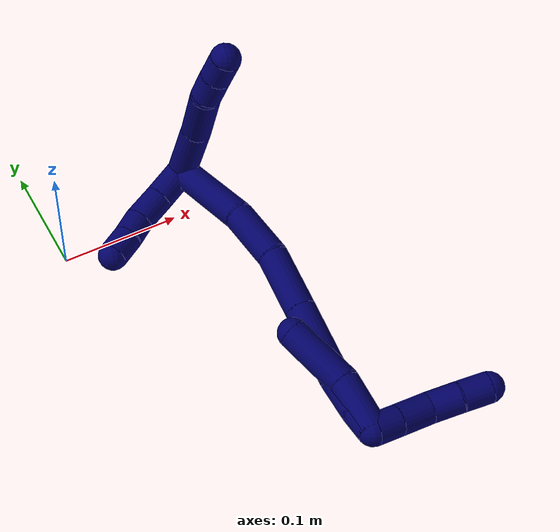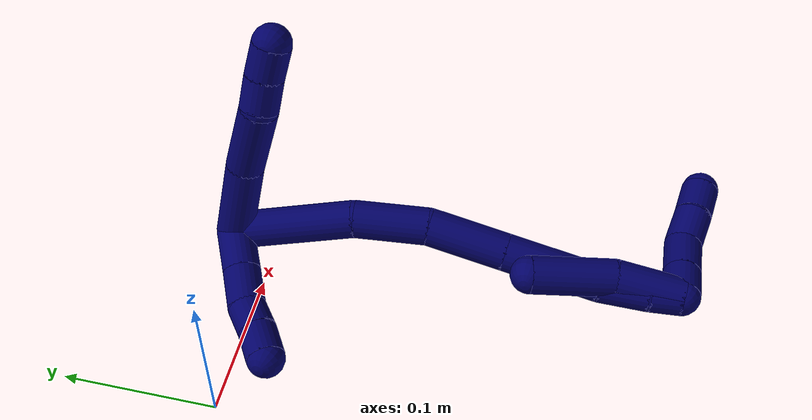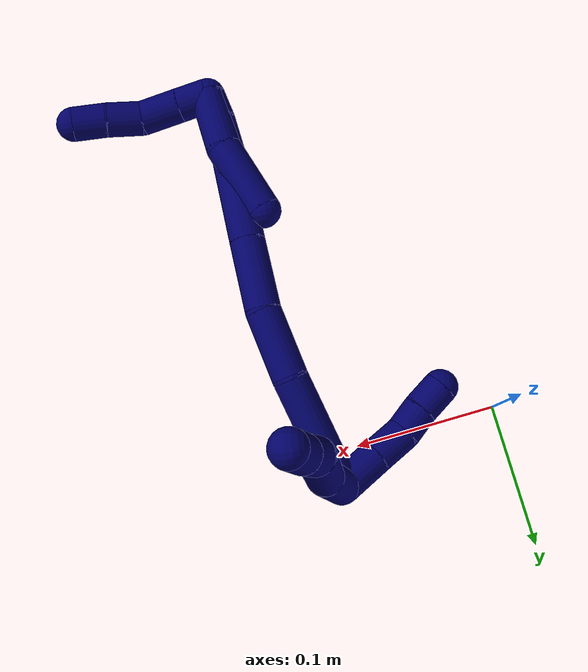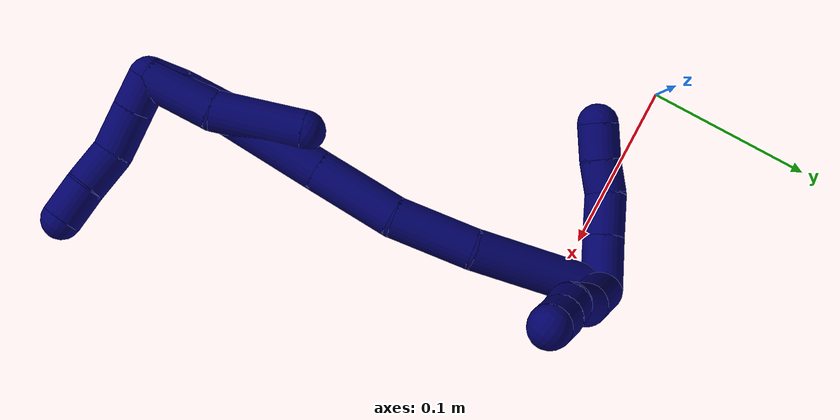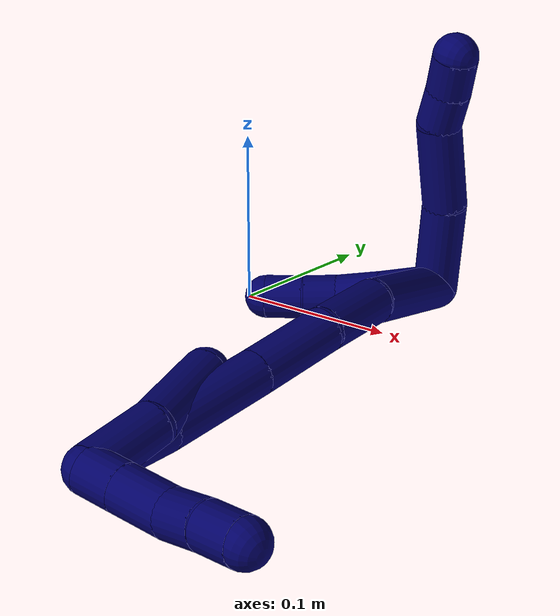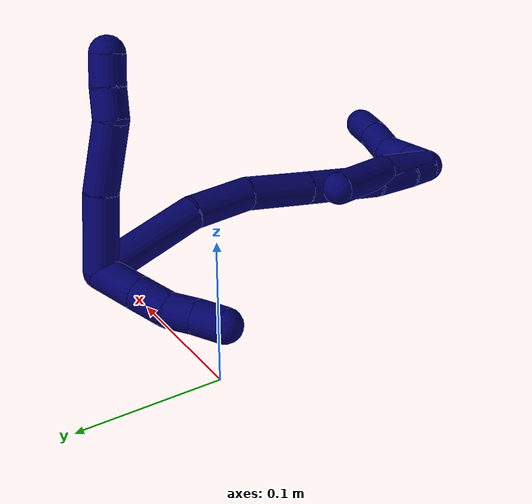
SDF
<sdf version="1.7">
 <world name="default">
  <model name="7">
   <static>0</static>
   <link name="7">
    <collision name="collision-cylinder-e_1_2_8">
     <pose>0.02672 0.007601 -0.000725 -1.66585 1.29247 -1.38508</pose>
     <geometry><cylinder><radius>0.0125</radius><length>0.055579</length></cylinder></geometry>
     <surface>
      <friction><ode><mu>1.16</mu><mu2>1.16</mu2><slip1>0</slip1><slip2>0</slip2></ode></friction>
      <contact><ode><kp>1e+06</kp><kd>1</kd><max_vel>0</max_vel><min_depth>0.001</min_depth></ode></contact>
     </surface>
    </collision>
    <visual name="visual-cylinder-e_1_2_8">
     <pose>0.02672 0.007601 -0.000725 -1.66585 1.29247 -1.38508</pose>
     <geometry><cylinder><radius>0.0125</radius><length>0.055579</length></cylinder></geometry>
     <material><ambient>0.003922 0 0.403922 1</ambient></material>
    </visual>
    <collision name="collision-cylinder-e_2_8_9">
     <pose>0.078364 0.019415 0.000756 -1.08866 1.38223 -0.928482</pose>
     <geometry><cylinder><radius>0.0125</radius><length>0.050749</length></cylinder></geometry>
     <surface>
      <friction><ode><mu>1.16</mu><mu2>1.16</mu2><slip1>0</slip1><slip2>0</slip2></ode></friction>
      <contact><ode><kp>1e+06</kp><kd>1</kd><max_vel>0</max_vel><min_depth>0.001</min_depth></ode></contact>
     </surface>
    </collision>
    <visual name="visual-cylinder-e_2_8_9">
     <pose>0.078364 0.019415 0.000756 -1.08866 1.38223 -0.928482</pose>
     <geometry><cylinder><radius>0.0125</radius><length>0.050749</length></cylinder></geometry>
     <material><ambient>0.003922 0 0.403922 1</ambient></material>
    </visual>
    <collision name="collision-cylinder-e_3_9_10">
     <pose>0.113394 0.027116 0.001005 -2.08223 1.19407 -1.71959</pose>
     <geometry><cylinder><radius>0.0125</radius><length>0.021735</length></cylinder></geometry>
     <surface>
      <friction><ode><mu>1.16</mu><mu2>1.16</mu2><slip1>0</slip1><slip2>0</slip2></ode></friction>
      <contact><ode><kp>1e+06</kp><kd>1</kd><max_vel>0</max_vel><min_depth>0.001</min_depth></ode></contact>
     </surface>
    </collision>
    <visual name="visual-cylinder-e_3_9_10">
     <pose>0.113394 0.027116 0.001005 -2.08223 1.19407 -1.71959</pose>
     <geometry><cylinder><radius>0.0125</radius><length>0.021735</length></cylinder></geometry>
     <material><ambient>0.003922 0 0.403922 1</ambient></material>
    </visual>
    <collision name="collision-cylinder-e_4_10_6">
     <pose>0.133985 0.033376 -0.002586 -2.10318 1.27287 -1.82505</pose>
     <geometry><cylinder><radius>0.0125</radius><length>0.021938</length></cylinder></geometry>
     <surface>
      <friction><ode><mu>1.16</mu><mu2>1.16</mu2><slip1>0</slip1><slip2>0</slip2></ode></friction>
      <contact><ode><kp>1e+06</kp><kd>1</kd><max_vel>0</max_vel><min_depth>0.001</min_depth></ode></contact>
     </surface>
    </collision>
    <visual name="visual-cylinder-e_4_10_6">
     <pose>0.133985 0.033376 -0.002586 -2.10318 1.27287 -1.82505</pose>
     <geometry><cylinder><radius>0.0125</radius><length>0.021938</length></cylinder></geometry>
     <material><ambient>0.003922 0 0.403922 1</ambient></material>
    </visual>
    <collision name="collision-cylinder-e_1_2_11">
     <pose>-0.001821 -0.010047 0.012171 0.690085 -0.114871 -0.041327</pose>
     <geometry><cylinder><radius>0.0125</radius><length>0.031773</length></cylinder></geometry>
     <surface>
      <friction><ode><mu>1.16</mu><mu2>1.16</mu2><slip1>0</slip1><slip2>0</slip2></ode></friction>
      <contact><ode><kp>1e+06</kp><kd>1</kd><max_vel>0</max_vel><min_depth>0.001</min_depth></ode></contact>
     </surface>
    </collision>
    <visual name="visual-cylinder-e_1_2_11">
     <pose>-0.001821 -0.010047 0.012171 0.690085 -0.114871 -0.041327</pose>
     <geometry><cylinder><radius>0.0125</radius><length>0.031773</length></cylinder></geometry>
     <material><ambient>0.003922 0 0.403922 1</ambient></material>
    </visual>
    <collision name="collision-cylinder-e_2_11_12">
     <pose>-0.004888 -0.02818 0.03465 0.665185 -0.094793 -0.032765</pose>
     <geometry><cylinder><radius>0.0125</radius><length>0.026322</length></cylinder></geometry>
     <surface>
      <friction><ode><mu>1.16</mu><mu2>1.16</mu2><slip1>0</slip1><slip2>0</slip2></ode></friction>
      <contact><ode><kp>1e+06</kp><kd>1</kd><max_vel>0</max_vel><min_depth>0.001</min_depth></ode></contact>
     </surface>
    </collision>
    <visual name="visual-cylinder-e_2_11_12">
     <pose>-0.004888 -0.02818 0.03465 0.665185 -0.094793 -0.032765</pose>
     <geometry><cylinder><radius>0.0125</radius><length>0.026322</length></cylinder></geometry>
     <material><ambient>0.003922 0 0.403922 1</ambient></material>
    </visual>
    <collision name="collision-cylinder-e_3_12_13">
     <pose>-0.004802 -0.043501 0.051923 0.804405 0.131779 0.056124</pose>
     <geometry><cylinder><radius>0.0125</radius><length>0.02026</length></cylinder></geometry>
     <surface>
      <friction><ode><mu>1.16</mu><mu2>1.16</mu2><slip1>0</slip1><slip2>0</slip2></ode></friction>
      <contact><ode><kp>1e+06</kp><kd>1</kd><max_vel>0</max_vel><min_depth>0.001</min_depth></ode></contact>
     </surface>
    </collision>
    <visual name="visual-cylinder-e_3_12_13">
     <pose>-0.004802 -0.043501 0.051923 0.804405 0.131779 0.056124</pose>
     <geometry><cylinder><radius>0.0125</radius><length>0.02026</length></cylinder></geometry>
     <material><ambient>0.003922 0 0.403922 1</ambient></material>
    </visual>
    <collision name="collision-cylinder-e_4_13_5">
     <pose>-0.002534 -0.057829 0.067008 0.71807 0.086702 0.032557</pose>
     <geometry><cylinder><radius>0.0125</radius><length>0.021645</length></cylinder></geometry>
     <surface>
      <friction><ode><mu>1.16</mu><mu2>1.16</mu2><slip1>0</slip1><slip2>0</slip2></ode></friction>
      <contact><ode><kp>1e+06</kp><kd>1</kd><max_vel>0</max_vel><min_depth>0.001</min_depth></ode></contact>
     </surface>
    </collision>
    <visual name="visual-cylinder-e_4_13_5">
     <pose>-0.002534 -0.057829 0.067008 0.71807 0.086702 0.032557</pose>
     <geometry><cylinder><radius>0.0125</radius><length>0.021645</length></cylinder></geometry>
     <material><ambient>0.003922 0 0.403922 1</ambient></material>
    </visual>
    <collision name="collision-cylinder-e_1_2_14">
     <pose>0.024864 -0.03087 -0.010518 1.89919 0.651388 0.881764</pose>
     <geometry><cylinder><radius>0.0125</radius><length>0.08202</length></cylinder></geometry>
     <surface>
      <friction><ode><mu>1.16</mu><mu2>1.16</mu2><slip1>0</slip1><slip2>0</slip2></ode></friction>
      <contact><ode><kp>1e+06</kp><kd>1</kd><max_vel>0</max_vel><min_depth>0.001</min_depth></ode></contact>
     </surface>
    </collision>
    <visual name="visual-cylinder-e_1_2_14">
     <pose>0.024864 -0.03087 -0.010518 1.89919 0.651388 0.881764</pose>
     <geometry><cylinder><radius>0.0125</radius><length>0.08202</length></cylinder></geometry>
     <material><ambient>0.003922 0 0.403922 1</ambient></material>
    </visual>
    <collision name="collision-cylinder-e_2_14_15">
     <pose>0.060058 -0.0833 -0.026881 1.83549 0.433161 0.560108</pose>
     <geometry><cylinder><radius>0.0125</radius><length>0.049222</length></cylinder></geometry>
     <surface>
      <friction><ode><mu>1.16</mu><mu2>1.16</mu2><slip1>0</slip1><slip2>0</slip2></ode></friction>
      <contact><ode><kp>1e+06</kp><kd>1</kd><max_vel>0</max_vel><min_depth>0.001</min_depth></ode></contact>
     </surface>
    </collision>
    <visual name="visual-cylinder-e_2_14_15">
     <pose>0.060058 -0.0833 -0.026881 1.83549 0.433161 0.560108</pose>
     <geometry><cylinder><radius>0.0125</radius><length>0.049222</length></cylinder></geometry>
     <material><ambient>0.003922 0 0.403922 1</ambient></material>
    </visual>
    <collision name="collision-cylinder-e_3_15_16">
     <pose>0.077261 -0.129985 -0.035637 1.68621 0.265313 0.297394</pose>
     <geometry><cylinder><radius>0.0125</radius><length>0.05242</length></cylinder></geometry>
     <surface>
      <friction><ode><mu>1.16</mu><mu2>1.16</mu2><slip1>0</slip1><slip2>0</slip2></ode></friction>
      <contact><ode><kp>1e+06</kp><kd>1</kd><max_vel>0</max_vel><min_depth>0.001</min_depth></ode></contact>
     </surface>
    </collision>
    <visual name="visual-cylinder-e_3_15_16">
     <pose>0.077261 -0.129985 -0.035637 1.68621 0.265313 0.297394</pose>
     <geometry><cylinder><radius>0.0125</radius><length>0.05242</length></cylinder></geometry>
     <material><ambient>0.003922 0 0.403922 1</ambient></material>
    </visual>
    <collision name="collision-cylinder-e_4_16_17">
     <pose>0.092793 -0.185577 -0.041754 1.67557 0.27546 0.305498</pose>
     <geometry><cylinder><radius>0.0125</radius><length>0.063671</length></cylinder></geometry>
     <surface>
      <friction><ode><mu>1.16</mu><mu2>1.16</mu2><slip1>0</slip1><slip2>0</slip2></ode></friction>
      <contact><ode><kp>1e+06</kp><kd>1</kd><max_vel>0</max_vel><min_depth>0.001</min_depth></ode></contact>
     </surface>
    </collision>
    <visual name="visual-cylinder-e_4_16_17">
     <pose>0.092793 -0.185577 -0.041754 1.67557 0.27546 0.305498</pose>
     <geometry><cylinder><radius>0.0125</radius><length>0.063671</length></cylinder></geometry>
     <material><ambient>0.003922 0 0.403922 1</ambient></material>
    </visual>
    <collision name="collision-cylinder-e_5_17_18">
     <pose>0.107801 -0.230555 -0.047358 1.7347 0.40755 0.477943</pose>
     <geometry><cylinder><radius>0.0125</radius><length>0.03204</length></cylinder></geometry>
     <surface>
      <friction><ode><mu>1.16</mu><mu2>1.16</mu2><slip1>0</slip1><slip2>0</slip2></ode></friction>
      <contact><ode><kp>1e+06</kp><kd>1</kd><max_vel>0</max_vel><min_depth>0.001</min_depth></ode></contact>
     </surface>
    </collision>
    <visual name="visual-cylinder-e_5_17_18">
     <pose>0.107801 -0.230555 -0.047358 1.7347 0.40755 0.477943</pose>
     <geometry><cylinder><radius>0.0125</radius><length>0.03204</length></cylinder></geometry>
     <material><ambient>0.003922 0 0.403922 1</ambient></material>
    </visual>
    <collision name="collision-cylinder-e_6_18_1">
     <pose>0.118277 -0.254174 -0.052283 1.84129 0.41156 0.535788</pose>
     <geometry><cylinder><radius>0.0125</radius><length>0.020627</length></cylinder></geometry>
     <surface>
      <friction><ode><mu>1.16</mu><mu2>1.16</mu2><slip1>0</slip1><slip2>0</slip2></ode></friction>
      <contact><ode><kp>1e+06</kp><kd>1</kd><max_vel>0</max_vel><min_depth>0.001</min_depth></ode></contact>
     </surface>
    </collision>
    <visual name="visual-cylinder-e_6_18_1">
     <pose>0.118277 -0.254174 -0.052283 1.84129 0.41156 0.535788</pose>
     <geometry><cylinder><radius>0.0125</radius><length>0.020627</length></cylinder></geometry>
     <material><ambient>0.003922 0 0.403922 1</ambient></material>
    </visual>
    <collision name="collision-cylinder-e_1_1_19">
     <pose>0.116381 -0.24231 -0.050908 -1.38688 -0.275112 0.229101</pose>
     <geometry><cylinder><radius>0.0125</radius><length>0.044332</length></cylinder></geometry>
     <surface>
      <friction><ode><mu>1.16</mu><mu2>1.16</mu2><slip1>0</slip1><slip2>0</slip2></ode></friction>
      <contact><ode><kp>1e+06</kp><kd>1</kd><max_vel>0</max_vel><min_depth>0.001</min_depth></ode></contact>
     </surface>
    </collision>
    <visual name="visual-cylinder-e_1_1_19">
     <pose>0.116381 -0.24231 -0.050908 -1.38688 -0.275112 0.229101</pose>
     <geometry><cylinder><radius>0.0125</radius><length>0.044332</length></cylinder></geometry>
     <material><ambient>0.003922 0 0.403922 1</ambient></material>
    </visual>
    <collision name="collision-cylinder-e_2_19_4">
     <pose>0.101 -0.197674 -0.035729 -1.12606 -0.342939 0.217738</pose>
     <geometry><cylinder><radius>0.0125</radius><length>0.055668</length></cylinder></geometry>
     <surface>
      <friction><ode><mu>1.16</mu><mu2>1.16</mu2><slip1>0</slip1><slip2>0</slip2></ode></friction>
      <contact><ode><kp>1e+06</kp><kd>1</kd><max_vel>0</max_vel><min_depth>0.001</min_depth></ode></contact>
     </surface>
    </collision>
    <visual name="visual-cylinder-e_2_19_4">
     <pose>0.101 -0.197674 -0.035729 -1.12606 -0.342939 0.217738</pose>
     <geometry><cylinder><radius>0.0125</radius><length>0.055668</length></cylinder></geometry>
     <material><ambient>0.003922 0 0.403922 1</ambient></material>
    </visual>
    <collision name="collision-cylinder-e_1_1_20">
     <pose>0.12225 -0.261548 -0.065419 -2.97948 -0.014163 0.173912</pose>
     <geometry><cylinder><radius>0.0125</radius><length>0.021504</length></cylinder></geometry>
     <surface>
      <friction><ode><mu>1.16</mu><mu2>1.16</mu2><slip1>0</slip1><slip2>0</slip2></ode></friction>
      <contact><ode><kp>1e+06</kp><kd>1</kd><max_vel>0</max_vel><min_depth>0.001</min_depth></ode></contact>
     </surface>
    </collision>
    <visual name="visual-cylinder-e_1_1_20">
     <pose>0.12225 -0.261548 -0.065419 -2.97948 -0.014163 0.173912</pose>
     <geometry><cylinder><radius>0.0125</radius><length>0.021504</length></cylinder></geometry>
     <material><ambient>0.003922 0 0.403922 1</ambient></material>
    </visual>
    <collision name="collision-cylinder-e_2_20_21">
     <pose>0.121864 -0.257403 -0.090332 -2.9747 -0.016133 0.192295</pose>
     <geometry><cylinder><radius>0.0125</radius><length>0.029012</length></cylinder></geometry>
     <surface>
      <friction><ode><mu>1.16</mu><mu2>1.16</mu2><slip1>0</slip1><slip2>0</slip2></ode></friction>
      <contact><ode><kp>1e+06</kp><kd>1</kd><max_vel>0</max_vel><min_depth>0.001</min_depth></ode></contact>
     </surface>
    </collision>
    <visual name="visual-cylinder-e_2_20_21">
     <pose>0.121864 -0.257403 -0.090332 -2.9747 -0.016133 0.192295</pose>
     <geometry><cylinder><radius>0.0125</radius><length>0.029012</length></cylinder></geometry>
     <material><ambient>0.003922 0 0.403922 1</ambient></material>
    </visual>
    <collision name="collision-cylinder-e_3_21_22">
     <pose>0.125744 -0.253707 -0.116745 -3.03574 0.325804 -2.518</pose>
     <geometry><cylinder><radius>0.0125</radius><length>0.02571</length></cylinder></geometry>
     <surface>
      <friction><ode><mu>1.16</mu><mu2>1.16</mu2><slip1>0</slip1><slip2>0</slip2></ode></friction>
      <contact><ode><kp>1e+06</kp><kd>1</kd><max_vel>0</max_vel><min_depth>0.001</min_depth></ode></contact>
     </surface>
    </collision>
    <visual name="visual-cylinder-e_3_21_22">
     <pose>0.125744 -0.253707 -0.116745 -3.03574 0.325804 -2.518</pose>
     <geometry><cylinder><radius>0.0125</radius><length>0.02571</length></cylinder></geometry>
     <material><ambient>0.003922 0 0.403922 1</ambient></material>
    </visual>
    <collision name="collision-cylinder-e_4_22_3">
     <pose>0.132314 -0.251228 -0.140425 -3.03893 0.20801 -2.22682</pose>
     <geometry><cylinder><radius>0.0125</radius><length>0.023774</length></cylinder></geometry>
     <surface>
      <friction><ode><mu>1.16</mu><mu2>1.16</mu2><slip1>0</slip1><slip2>0</slip2></ode></friction>
      <contact><ode><kp>1e+06</kp><kd>1</kd><max_vel>0</max_vel><min_depth>0.001</min_depth></ode></contact>
     </surface>
    </collision>
    <visual name="visual-cylinder-e_4_22_3">
     <pose>0.132314 -0.251228 -0.140425 -3.03893 0.20801 -2.22682</pose>
     <geometry><cylinder><radius>0.0125</radius><length>0.023774</length></cylinder></geometry>
     <material><ambient>0.003922 0 0.403922 1</ambient></material>
    </visual>
    <collision name="collision-sphere-3">
     <pose>0.134768 -0.250036 -0.151995 0 -0 0</pose>
     <geometry><sphere><radius>0.0125</radius></sphere></geometry>
     <surface>
      <friction><ode><mu>1.16</mu><mu2>1.16</mu2><slip1>0</slip1><slip2>0</slip2></ode></friction>
      <contact><ode><kp>1e+06</kp><kd>1</kd><max_vel>0</max_vel><min_depth>0.001</min_depth></ode></contact>
     </surface>
    </collision>
    <visual name="visual-sphere-3">
     <pose>0.134768 -0.250036 -0.151995 0 -0 0</pose>
     <geometry><sphere><radius>0.0125</radius></sphere></geometry>
     <material><ambient>0.003922 0 0.403922 1</ambient></material>
    </visual>
    <collision name="collision-sphere-22">
     <pose>0.129859 -0.25242 -0.128856 0 -0 0</pose>
     <geometry><sphere><radius>0.0125</radius></sphere></geometry>
     <surface>
      <friction><ode><mu>1.16</mu><mu2>1.16</mu2><slip1>0</slip1><slip2>0</slip2></ode></friction>
      <contact><ode><kp>1e+06</kp><kd>1</kd><max_vel>0</max_vel><min_depth>0.001</min_depth></ode></contact>
     </surface>
    </collision>
    <visual name="visual-sphere-22">
     <pose>0.129859 -0.25242 -0.128856 0 -0 0</pose>
     <geometry><sphere><radius>0.0125</radius></sphere></geometry>
     <material><ambient>0.003922 0 0.403922 1</ambient></material>
    </visual>
    <collision name="collision-sphere-21">
     <pose>0.12163 -0.254994 -0.104635 0 -0 0</pose>
     <geometry><sphere><radius>0.0125</radius></sphere></geometry>
     <surface>
      <friction><ode><mu>1.16</mu><mu2>1.16</mu2><slip1>0</slip1><slip2>0</slip2></ode></friction>
      <contact><ode><kp>1e+06</kp><kd>1</kd><max_vel>0</max_vel><min_depth>0.001</min_depth></ode></contact>
     </surface>
    </collision>
    <visual name="visual-sphere-21">
     <pose>0.12163 -0.254994 -0.104635 0 -0 0</pose>
     <geometry><sphere><radius>0.0125</radius></sphere></geometry>
     <material><ambient>0.003922 0 0.403922 1</ambient></material>
    </visual>
    <collision name="collision-sphere-20">
     <pose>0.122098 -0.259813 -0.07603 0 -0 0</pose>
     <geometry><sphere><radius>0.0125</radius></sphere></geometry>
     <surface>
      <friction><ode><mu>1.16</mu><mu2>1.16</mu2><slip1>0</slip1><slip2>0</slip2></ode></friction>
      <contact><ode><kp>1e+06</kp><kd>1</kd><max_vel>0</max_vel><min_depth>0.001</min_depth></ode></contact>
     </surface>
    </collision>
    <visual name="visual-sphere-20">
     <pose>0.122098 -0.259813 -0.07603 0 -0 0</pose>
     <geometry><sphere><radius>0.0125</radius></sphere></geometry>
     <material><ambient>0.003922 0 0.403922 1</ambient></material>
    </visual>
    <collision name="collision-sphere-4">
     <pose>0.091641 -0.174011 -0.024452 0 -0 0</pose>
     <geometry><sphere><radius>0.0125</radius></sphere></geometry>
     <surface>
      <friction><ode><mu>1.16</mu><mu2>1.16</mu2><slip1>0</slip1><slip2>0</slip2></ode></friction>
      <contact><ode><kp>1e+06</kp><kd>1</kd><max_vel>0</max_vel><min_depth>0.001</min_depth></ode></contact>
     </surface>
    </collision>
    <visual name="visual-sphere-4">
     <pose>0.091641 -0.174011 -0.024452 0 -0 0</pose>
     <geometry><sphere><radius>0.0125</radius></sphere></geometry>
     <material><ambient>0.003922 0 0.403922 1</ambient></material>
    </visual>
    <collision name="collision-sphere-11">
     <pose>-0.003642 -0.020094 0.024342 0 -0 0</pose>
     <geometry><sphere><radius>0.0125</radius></sphere></geometry>
     <surface>
      <friction><ode><mu>1.16</mu><mu2>1.16</mu2><slip1>0</slip1><slip2>0</slip2></ode></friction>
      <contact><ode><kp>1e+06</kp><kd>1</kd><max_vel>0</max_vel><min_depth>0.001</min_depth></ode></contact>
     </surface>
    </collision>
    <visual name="visual-sphere-11">
     <pose>-0.003642 -0.020094 0.024342 0 -0 0</pose>
     <geometry><sphere><radius>0.0125</radius></sphere></geometry>
     <material><ambient>0.003922 0 0.403922 1</ambient></material>
    </visual>
    <collision name="collision-sphere-6">
     <pose>0.144471 0.036151 -0.004221 0 -0 0</pose>
     <geometry><sphere><radius>0.0125</radius></sphere></geometry>
     <surface>
      <friction><ode><mu>1.16</mu><mu2>1.16</mu2><slip1>0</slip1><slip2>0</slip2></ode></friction>
      <contact><ode><kp>1e+06</kp><kd>1</kd><max_vel>0</max_vel><min_depth>0.001</min_depth></ode></contact>
     </surface>
    </collision>
    <visual name="visual-sphere-6">
     <pose>0.144471 0.036151 -0.004221 0 -0 0</pose>
     <geometry><sphere><radius>0.0125</radius></sphere></geometry>
     <material><ambient>0.003922 0 0.403922 1</ambient></material>
    </visual>
    <collision name="collision-sphere-10">
     <pose>0.1235 0.030602 -0.000952 0 -0 0</pose>
     <geometry><sphere><radius>0.0125</radius></sphere></geometry>
     <surface>
      <friction><ode><mu>1.16</mu><mu2>1.16</mu2><slip1>0</slip1><slip2>0</slip2></ode></friction>
      <contact><ode><kp>1e+06</kp><kd>1</kd><max_vel>0</max_vel><min_depth>0.001</min_depth></ode></contact>
     </surface>
    </collision>
    <visual name="visual-sphere-10">
     <pose>0.1235 0.030602 -0.000952 0 -0 0</pose>
     <geometry><sphere><radius>0.0125</radius></sphere></geometry>
     <material><ambient>0.003922 0 0.403922 1</ambient></material>
    </visual>
    <collision name="collision-sphere-9">
     <pose>0.103289 0.023629 0.002962 0 -0 0</pose>
     <geometry><sphere><radius>0.0125</radius></sphere></geometry>
     <surface>
      <friction><ode><mu>1.16</mu><mu2>1.16</mu2><slip1>0</slip1><slip2>0</slip2></ode></friction>
      <contact><ode><kp>1e+06</kp><kd>1</kd><max_vel>0</max_vel><min_depth>0.001</min_depth></ode></contact>
     </surface>
    </collision>
    <visual name="visual-sphere-9">
     <pose>0.103289 0.023629 0.002962 0 -0 0</pose>
     <geometry><sphere><radius>0.0125</radius></sphere></geometry>
     <material><ambient>0.003922 0 0.403922 1</ambient></material>
    </visual>
    <collision name="collision-sphere-2">
     <geometry><sphere><radius>0.0125</radius></sphere></geometry>
     <surface>
      <friction><ode><mu>1.16</mu><mu2>1.16</mu2><slip1>0</slip1><slip2>0</slip2></ode></friction>
      <contact><ode><kp>1e+06</kp><kd>1</kd><max_vel>0</max_vel><min_depth>0.001</min_depth></ode></contact>
     </surface>
    </collision>
    <visual name="visual-sphere-2">
     <geometry><sphere><radius>0.0125</radius></sphere></geometry>
     <material><ambient>0.003922 0 0.403922 1</ambient></material>
    </visual>
    <collision name="collision-sphere-19">
     <pose>0.11036 -0.221338 -0.047007 0 -0 0</pose>
     <geometry><sphere><radius>0.0125</radius></sphere></geometry>
     <surface>
      <friction><ode><mu>1.16</mu><mu2>1.16</mu2><slip1>0</slip1><slip2>0</slip2></ode></friction>
      <contact><ode><kp>1e+06</kp><kd>1</kd><max_vel>0</max_vel><min_depth>0.001</min_depth></ode></contact>
     </surface>
    </collision>
    <visual name="visual-sphere-19">
     <pose>0.11036 -0.221338 -0.047007 0 -0 0</pose>
     <geometry><sphere><radius>0.0125</radius></sphere></geometry>
     <material><ambient>0.003922 0 0.403922 1</ambient></material>
    </visual>
    <collision name="collision-sphere-8">
     <pose>0.05344 0.015201 -0.001449 0 -0 0</pose>
     <geometry><sphere><radius>0.0125</radius></sphere></geometry>
     <surface>
      <friction><ode><mu>1.16</mu><mu2>1.16</mu2><slip1>0</slip1><slip2>0</slip2></ode></friction>
      <contact><ode><kp>1e+06</kp><kd>1</kd><max_vel>0</max_vel><min_depth>0.001</min_depth></ode></contact>
     </surface>
    </collision>
    <visual name="visual-sphere-8">
     <pose>0.05344 0.015201 -0.001449 0 -0 0</pose>
     <geometry><sphere><radius>0.0125</radius></sphere></geometry>
     <material><ambient>0.003922 0 0.403922 1</ambient></material>
    </visual>
    <collision name="collision-sphere-12">
     <pose>-0.006133 -0.036267 0.044959 0 -0 0</pose>
     <geometry><sphere><radius>0.0125</radius></sphere></geometry>
     <surface>
      <friction><ode><mu>1.16</mu><mu2>1.16</mu2><slip1>0</slip1><slip2>0</slip2></ode></friction>
      <contact><ode><kp>1e+06</kp><kd>1</kd><max_vel>0</max_vel><min_depth>0.001</min_depth></ode></contact>
     </surface>
    </collision>
    <visual name="visual-sphere-12">
     <pose>-0.006133 -0.036267 0.044959 0 -0 0</pose>
     <geometry><sphere><radius>0.0125</radius></sphere></geometry>
     <material><ambient>0.003922 0 0.403922 1</ambient></material>
    </visual>
    <collision name="collision-sphere-13">
     <pose>-0.003471 -0.050736 0.058888 0 -0 0</pose>
     <geometry><sphere><radius>0.0125</radius></sphere></geometry>
     <surface>
      <friction><ode><mu>1.16</mu><mu2>1.16</mu2><slip1>0</slip1><slip2>0</slip2></ode></friction>
      <contact><ode><kp>1e+06</kp><kd>1</kd><max_vel>0</max_vel><min_depth>0.001</min_depth></ode></contact>
     </surface>
    </collision>
    <visual name="visual-sphere-13">
     <pose>-0.003471 -0.050736 0.058888 0 -0 0</pose>
     <geometry><sphere><radius>0.0125</radius></sphere></geometry>
     <material><ambient>0.003922 0 0.403922 1</ambient></material>
    </visual>
    <collision name="collision-sphere-5">
     <pose>-0.001597 -0.064923 0.075127 0 -0 0</pose>
     <geometry><sphere><radius>0.0125</radius></sphere></geometry>
     <surface>
      <friction><ode><mu>1.16</mu><mu2>1.16</mu2><slip1>0</slip1><slip2>0</slip2></ode></friction>
      <contact><ode><kp>1e+06</kp><kd>1</kd><max_vel>0</max_vel><min_depth>0.001</min_depth></ode></contact>
     </surface>
    </collision>
    <visual name="visual-sphere-5">
     <pose>-0.001597 -0.064923 0.075127 0 -0 0</pose>
     <geometry><sphere><radius>0.0125</radius></sphere></geometry>
     <material><ambient>0.003922 0 0.403922 1</ambient></material>
    </visual>
    <collision name="collision-sphere-14">
     <pose>0.049728 -0.06174 -0.021037 0 -0 0</pose>
     <geometry><sphere><radius>0.0125</radius></sphere></geometry>
     <surface>
      <friction><ode><mu>1.16</mu><mu2>1.16</mu2><slip1>0</slip1><slip2>0</slip2></ode></friction>
      <contact><ode><kp>1e+06</kp><kd>1</kd><max_vel>0</max_vel><min_depth>0.001</min_depth></ode></contact>
     </surface>
    </collision>
    <visual name="visual-sphere-14">
     <pose>0.049728 -0.06174 -0.021037 0 -0 0</pose>
     <geometry><sphere><radius>0.0125</radius></sphere></geometry>
     <material><ambient>0.003922 0 0.403922 1</ambient></material>
    </visual>
    <collision name="collision-sphere-15">
     <pose>0.070389 -0.104861 -0.032725 0 -0 0</pose>
     <geometry><sphere><radius>0.0125</radius></sphere></geometry>
     <surface>
      <friction><ode><mu>1.16</mu><mu2>1.16</mu2><slip1>0</slip1><slip2>0</slip2></ode></friction>
      <contact><ode><kp>1e+06</kp><kd>1</kd><max_vel>0</max_vel><min_depth>0.001</min_depth></ode></contact>
     </surface>
    </collision>
    <visual name="visual-sphere-15">
     <pose>0.070389 -0.104861 -0.032725 0 -0 0</pose>
     <geometry><sphere><radius>0.0125</radius></sphere></geometry>
     <material><ambient>0.003922 0 0.403922 1</ambient></material>
    </visual>
    <collision name="collision-sphere-16">
     <pose>0.084134 -0.15511 -0.03855 0 -0 0</pose>
     <geometry><sphere><radius>0.0125</radius></sphere></geometry>
     <surface>
      <friction><ode><mu>1.16</mu><mu2>1.16</mu2><slip1>0</slip1><slip2>0</slip2></ode></friction>
      <contact><ode><kp>1e+06</kp><kd>1</kd><max_vel>0</max_vel><min_depth>0.001</min_depth></ode></contact>
     </surface>
    </collision>
    <visual name="visual-sphere-16">
     <pose>0.084134 -0.15511 -0.03855 0 -0 0</pose>
     <geometry><sphere><radius>0.0125</radius></sphere></geometry>
     <material><ambient>0.003922 0 0.403922 1</ambient></material>
    </visual>
    <collision name="collision-sphere-17">
     <pose>0.101452 -0.216045 -0.044958 0 -0 0</pose>
     <geometry><sphere><radius>0.0125</radius></sphere></geometry>
     <surface>
      <friction><ode><mu>1.16</mu><mu2>1.16</mu2><slip1>0</slip1><slip2>0</slip2></ode></friction>
      <contact><ode><kp>1e+06</kp><kd>1</kd><max_vel>0</max_vel><min_depth>0.001</min_depth></ode></contact>
     </surface>
    </collision>
    <visual name="visual-sphere-17">
     <pose>0.101452 -0.216045 -0.044958 0 -0 0</pose>
     <geometry><sphere><radius>0.0125</radius></sphere></geometry>
     <material><ambient>0.003922 0 0.403922 1</ambient></material>
    </visual>
    <collision name="collision-sphere-18">
     <pose>0.114151 -0.245066 -0.049758 0 -0 0</pose>
     <geometry><sphere><radius>0.0125</radius></sphere></geometry>
     <surface>
      <friction><ode><mu>1.16</mu><mu2>1.16</mu2><slip1>0</slip1><slip2>0</slip2></ode></friction>
      <contact><ode><kp>1e+06</kp><kd>1</kd><max_vel>0</max_vel><min_depth>0.001</min_depth></ode></contact>
     </surface>
    </collision>
    <visual name="visual-sphere-18">
     <pose>0.114151 -0.245066 -0.049758 0 -0 0</pose>
     <geometry><sphere><radius>0.0125</radius></sphere></geometry>
     <material><ambient>0.003922 0 0.403922 1</ambient></material>
    </visual>
    <collision name="collision-sphere-1">
     <pose>0.122403 -0.263283 -0.054809 0 -0 0</pose>
     <geometry><sphere><radius>0.0125</radius></sphere></geometry>
     <surface>
      <friction><ode><mu>1.16</mu><mu2>1.16</mu2><slip1>0</slip1><slip2>0</slip2></ode></friction>
      <contact><ode><kp>1e+06</kp><kd>1</kd><max_vel>0</max_vel><min_depth>0.001</min_depth></ode></contact>
     </surface>
    </collision>
    <visual name="visual-sphere-1">
     <pose>0.122403 -0.263283 -0.054809 0 -0 0</pose>
     <geometry><sphere><radius>0.0125</radius></sphere></geometry>
     <material><ambient>0.003922 0 0.403922 1</ambient></material>
    </visual>
    <inertial>
     <pose>0.072933 -0.114254 -0.026876 0 -0 0</pose>
     <mass>0.75</mass>
     <inertia>
      <ixx>0.000175</ixx>
      <ixy>0</ixy>
      <ixz>0</ixz>
      <iyy>8.8e-05</iyy>
      <iyz>0</iyz>
      <izz>-1.2e-05</izz>
     </inertia>
    </inertial>
   </link>
   <pose>0.119544 0.023832 0.026501 1.11449 -1.12083 -1.29588</pose>
  </model>
 </world>
</sdf>
